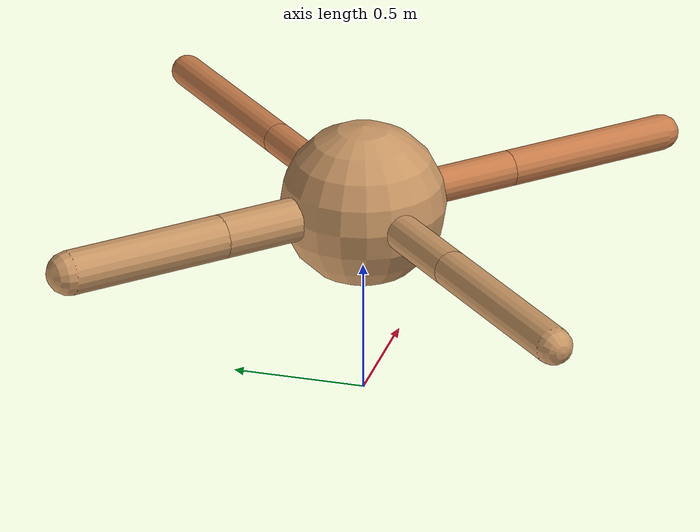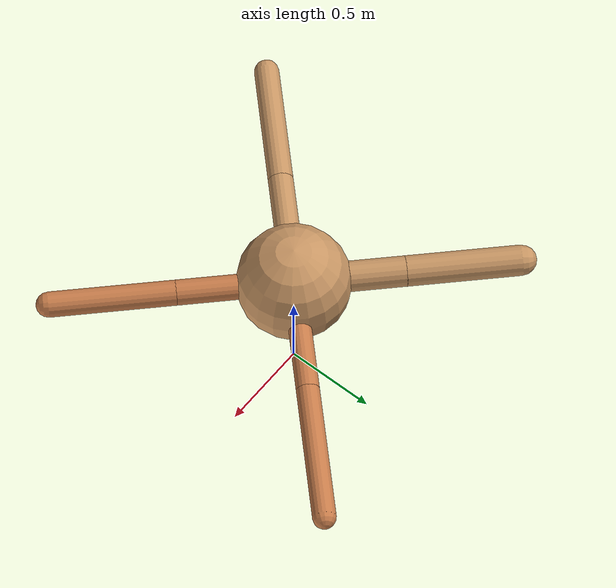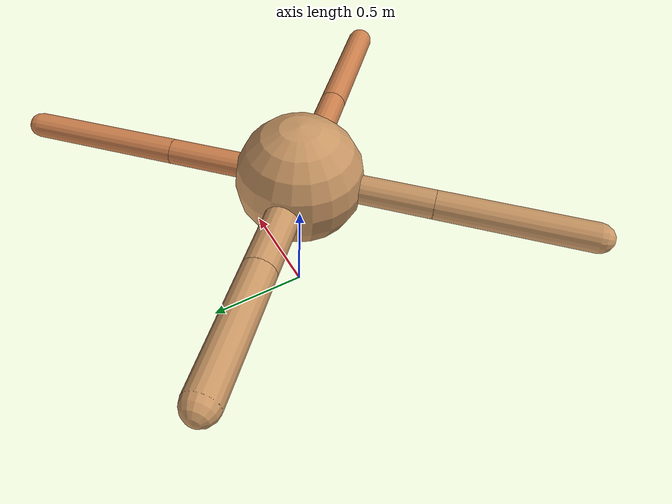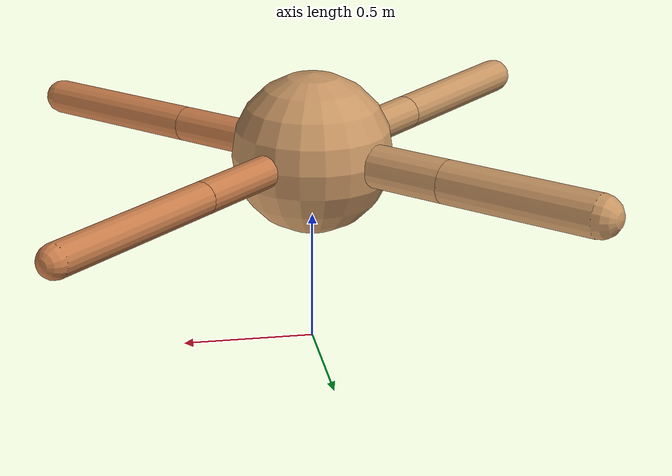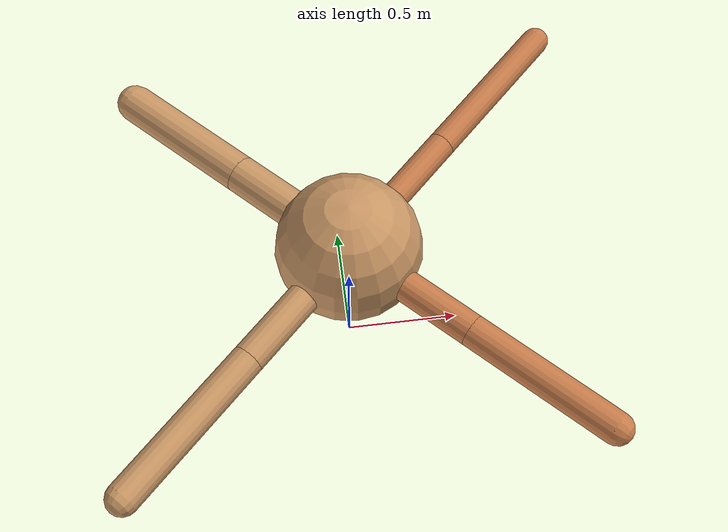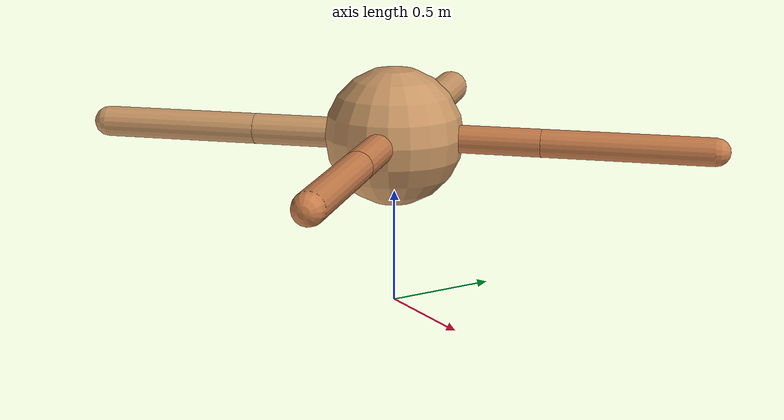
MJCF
<?xml version="1.0" ?>
<mujoco model="ant">

	<compiler angle="degree" coordinate="local" inertiafromgeom="true"/>

	<option integrator="RK4" timestep="0.01"/>

	<custom>

		<numeric data="0.0 0.0 0.55 1.0 0.0 0.0 0.0 0.0 1.0 0.0 -1.0 0.0 -1.0 0.0 1.0" name="init_qpos"/>

	</custom>

	<default>

		<joint armature="1" damping="1" limited="true"/>

		<geom conaffinity="0" condim="3" density="5.0" friction="1.5 0.1 0.1" margin="0.01" rgba="0.8 0.6 0.4 1"/>

	</default>

	<worldbody>

		<body name="torso" pos="0 0 0.75">

			<geom name="torso_geom" pos="0 0 0" size="0.30562787763019555" type="sphere"/>

			<!--joint armature="0" damping="0" limited="false" margin="0.01" name="root" pos="0 0 0" type="free"/-->

			<body name="front_left_leg" pos="0 0 0">

				<geom fromto="0 0 0 0.2 0.2 0" name="aux_1_geom" size="0.06093722626009489" type="capsule" rgba=".8 .5 .3 1"/>

				<body name="aux_1" pos="0.2 0.2 0">

					<joint axis="0 0 1" name="hip_1" pos="0.0 0.0 0.0" range="-40 40" type="hinge"/>

					<geom fromto="0 0 0 0.25926054710299823 0.25926054710299823 0" name="left_leg_geom" size="0.06093722626009489" type="capsule" rgba=".8 .5 .3 1"/>

					<body pos="0.25926054710299823 0.25926054710299823 0" name="front_left_foot">

						<joint axis="-1 1 0" name="ankle_1" pos="0.0 0.0 0.0" range="30 100" type="hinge"/>

						<geom fromto="0 0 0 0.5185210942059965 0.5185210942059965 0" name="left_ankle_geom" size="0.06093722626009489" type="capsule" rgba=".8 .5 .3 1"/>

					</body>

				</body>

			</body>

			<body name="front_right_leg" pos="0 0 0">

				<geom fromto="0 0 0 -0.2 0.2 0" name="aux_2_geom" size="0.0811031718497333" type="capsule"/>

				<body name="aux_2" pos="-0.2 0.2 0">

					<joint axis="0 0 1" name="hip_2" pos="0.0 0.0 0.0" range="-40 40" type="hinge"/>

					<geom fromto="0 0 0 -0.21541305177044287 0.21541305177044287 0" name="right_leg_geom" size="0.0811031718497333" type="capsule"/>

					<body pos="-0.21541305177044287 0.21541305177044287 0" name="front_right_foot">

						<joint axis="1 1 0" name="ankle_2" pos="0.0 0.0 0.0" range="-100 -30" type="hinge"/>

						<geom fromto="0 0 0 -0.43082610354088574 0.43082610354088574 0" name="right_ankle_geom" size="0.0811031718497333" type="capsule"/>

					</body>

				</body>

			</body>

			<body name="left_back_leg" pos="0 0 0">

				<geom fromto="0 0 0 -0.2 -0.2 0" name="aux_3_geom" size="0.0677570214238844" type="capsule"/>

				<body name="aux_3" pos="-0.2 -0.2 0">

					<joint axis="0 0 1" name="hip_3" pos="0.0 0.0 0.0" range="-40 40" type="hinge"/>

					<geom fromto="0 0 0 -0.24810398247590382 -0.24810398247590382 0" name="back_leg_geom" size="0.0677570214238844" type="capsule"/>

					<body pos="-0.24810398247590382 -0.24810398247590382 0" name="left_back_foot">

						<joint axis="-1 1 0" name="ankle_3" pos="0.0 0.0 0.0" range="-100 -30" type="hinge"/>

						<geom fromto="0 0 0 -0.49620796495180763 -0.49620796495180763 0" name="third_ankle_geom" size="0.0677570214238844" type="capsule"/>

					</body>

				</body>

			</body>

			<body name="right_back_leg" pos="0 0 0">

				<geom fromto="0 0 0 0.2 -0.2 0" name="aux_4_geom" size="0.06699420531356594" type="capsule" rgba=".8 .5 .3 1"/>

				<body name="aux_4" pos="0.2 -0.2 0">

					<joint axis="0 0 1" name="hip_4" pos="0.0 0.0 0.0" range="-40 40" type="hinge"/>

					<geom fromto="0 0 0 0.2348514566278174 -0.2348514566278174 0" name="rightback_leg_geom" size="0.06699420531356594" type="capsule" rgba=".8 .5 .3 1"/>

					<body pos="0.2348514566278174 -0.2348514566278174 0" name="right_back_foot">

						<joint axis="1 1 0" name="ankle_4" pos="0.0 0.0 0.0" range="30 100" type="hinge"/>

						<geom fromto="0 0 0 0.4697029132556348 -0.4697029132556348 0" name="fourth_ankle_geom" size="0.06699420531356594" type="capsule" rgba=".8 .5 .3 1"/>

					</body>

				</body>

			</body>

		</body>

	</worldbody>

	<actuator>

		<motor ctrllimited="true" ctrlrange="-1.0 1.0" joint="hip_4" gear="150"/>

		<motor ctrllimited="true" ctrlrange="-1.0 1.0" joint="ankle_4" gear="150"/>

		<motor ctrllimited="true" ctrlrange="-1.0 1.0" joint="hip_1" gear="150"/>

		<motor ctrllimited="true" ctrlrange="-1.0 1.0" joint="ankle_1" gear="150"/>

		<motor ctrllimited="true" ctrlrange="-1.0 1.0" joint="hip_2" gear="150"/>

		<motor ctrllimited="true" ctrlrange="-1.0 1.0" joint="ankle_2" gear="150"/>

		<motor ctrllimited="true" ctrlrange="-1.0 1.0" joint="hip_3" gear="150"/>

		<motor ctrllimited="true" ctrlrange="-1.0 1.0" joint="ankle_3" gear="150"/>

	</actuator>

</mujoco>
